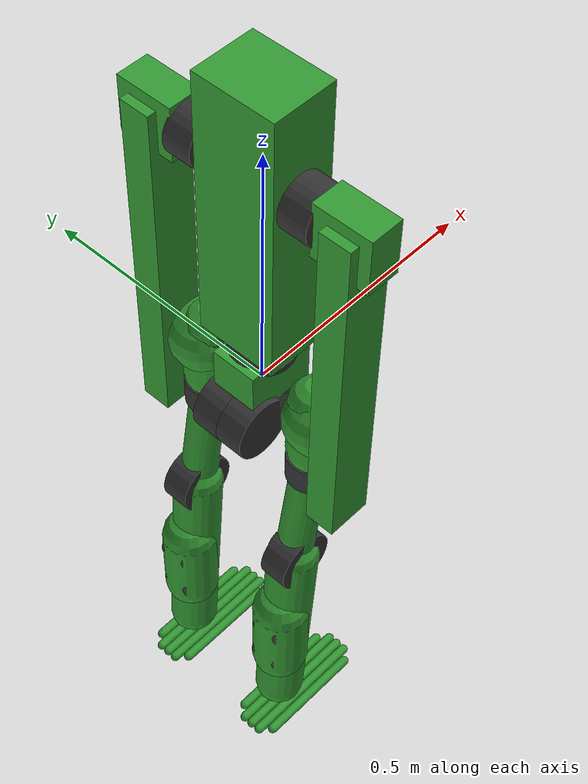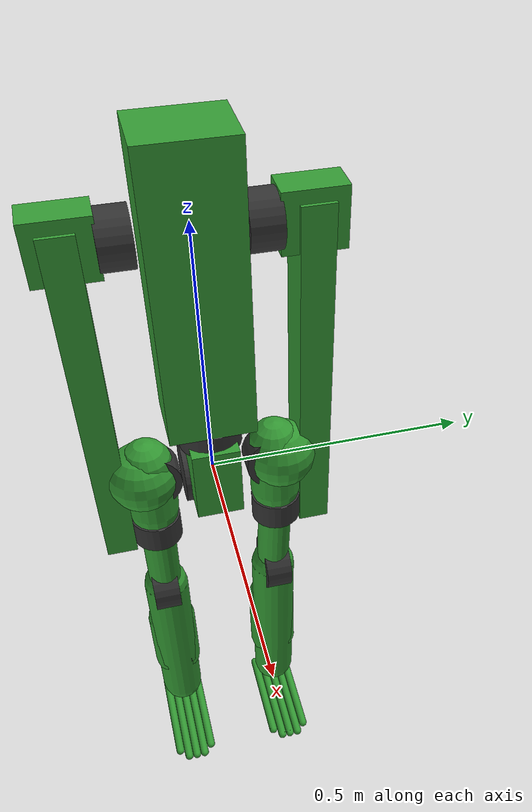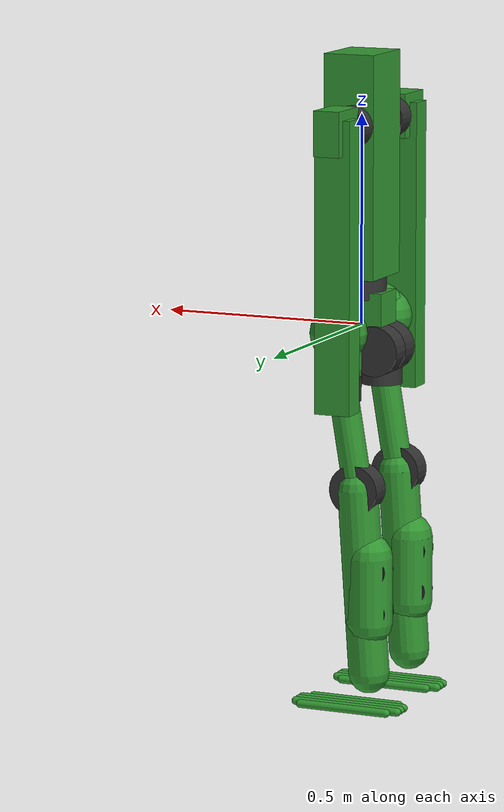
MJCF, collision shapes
<mujoco model="pygmalion_v2">
  <compiler angle="radian" meshdir="meshes" autolimits="true"/>
  <default>
    <default class="pygmalion">
      <default class="visual">
        <geom group="2" type="mesh" density="0" material="silver" contype="0" conaffinity="0"/>
      </default>
      <default class="collision">
        <geom group="3" rgba=".2 .6 .2 .3" type="capsule" contype="1" conaffinity="1"/>
        <default class="foot_capsule">
          <geom type="capsule" size="0.01"/>
        </default>
      </default>
      <default class="hull">
        <geom group="4" type="mesh" density="0" material="hull" contype="0" conaffinity="0"/>
      </default>
      <site group="5" rgba="1 0 0 1"/>
    </default>
  </default>
  <asset>
    <material name="silver" rgba="0.7 0.7 0.7 1"/>
    <material name="hull" rgba="0.2 0.4 0.9 0.25"/>
    <material name="black" rgba="0.2 0.2 0.2 1"/>
    <material name="red" rgba="1.0 0.0 0.0 1.0"/>
    <mesh name="pelvis" file="pelvis.stl"/>
    <mesh name="pelvis_hull" file="pelvis_hull.stl"/>
    <mesh name="L_hip_pitch_link" file="hip_pitch_link.stl"/>
    <mesh name="L_hip_pitch_link_hull" file="hip_pitch_link_hull.stl"/>
    <mesh name="L_hip_roll_link" file="hip_roll_link.stl"/>
    <mesh name="L_hip_roll_link_hull" file="hip_roll_link_hull.stl"/>
    <mesh name="L_thigh" file="thigh.stl"/>
    <mesh name="L_thigh_hull" file="thigh_hull.stl"/>
    <mesh name="L_shin" file="shin.stl"/>
    <mesh name="L_shin_hull" file="shin_hull.stl"/>
    <mesh name="L_foot" file="foot.stl"/>
    <mesh name="L_foot_hull" file="foot_hull.stl"/>
    <mesh name="R_hip_pitch_link" file="R_hip_pitch_link.stl"/>
    <mesh name="R_hip_pitch_link_hull" file="R_hip_pitch_link_hull.stl"/>
    <mesh name="R_hip_roll_link" file="R_hip_roll_link.stl"/>
    <mesh name="R_hip_roll_link_hull" file="R_hip_roll_link_hull.stl"/>
    <mesh name="R_thigh" file="R_thigh.stl"/>
    <mesh name="R_thigh_hull" file="R_thigh_hull.stl"/>
    <mesh name="R_shin" file="R_shin.stl"/>
    <mesh name="R_shin_hull" file="R_shin_hull.stl"/>
    <mesh name="R_foot" file="R_foot.stl"/>
    <mesh name="R_foot_hull" file="R_foot_hull.stl"/>
    <mesh name="torso" file="torso.stl"/>
    <mesh name="torso_hull" file="torso_hull.stl"/>
    <mesh name="L_torso_shpitch" file="torso_shpitch.stl"/>
    <mesh name="L_shoulder_pitch_link" file="shoulder_pitch_link.stl"/>
    <mesh name="L_shoulder_pitch_link_hull" file="shoulder_pitch_link_hull.stl"/>
    <mesh name="L_arm" file="arm.stl"/>
    <mesh name="L_arm_hull" file="arm_hull.stl"/>
    <mesh name="R_torso_shpitch" file="R_torso_shpitch.stl"/>
    <mesh name="R_shoulder_pitch_link" file="R_shoulder_pitch_link.stl"/>
    <mesh name="R_shoulder_pitch_link_hull" file="R_shoulder_pitch_link_hull.stl"/>
    <mesh name="R_arm" file="R_arm.stl"/>
    <mesh name="R_arm_hull" file="R_arm_hull.stl"/>
  </asset>
  <worldbody>
    <body name="base_link" childclass="pygmalion">
      <freejoint name="root"/>
      <inertial pos="-0.0277433 -0.00121931 0.00266945" mass="5.3668" fullinertia="0.0324176 0.0377931 0.0165288 0.000209331 -0.0085446 -8.55037e-05"/>
      <geom mesh="pelvis" class="visual"/>
      <geom name="pelvis_hull" mesh="pelvis_hull" class="hull"/>
      <geom name="L_hip_pitch_motor" type="cylinder" size="0.0600 0.0278" pos="-0.05288 -0.02732 -0.05380" zaxis="0.0000 1.0000 0.0000" class="visual" material="black"/>
      <geom name="waist_yaw_motor" type="cylinder" size="0.0600 0.0278" pos="0.00053 0.00058 0.09393" zaxis="0.0000 0.0000 1.0000" class="visual" material="black"/>
      <geom name="R_hip_pitch_motor" type="cylinder" size="0.0600 0.0278" pos="-0.05288 0.02732 -0.05380" zaxis="0.0000 -1.0000 0.0000" class="visual" material="black"/>
      <geom name="base_pelvis_collision" class="collision" type="box" pos="0 0 0.008" size="0.069 0.045 0.075"/>
      <site name="imu_in_base" size="0.03" pos="0.004 0 0.241"/>
      <body name="L_hip_pitch_link" pos="0 -0.1237 0">
        <inertial pos="0.000855967 0.0124212 0.00133312" mass="2.1738" fullinertia="0.00551161 0.00351194 0.00413077 3.68377e-05 4.96564e-06 -9.93989e-05"/>
        <joint name="L_hip_pitch_joint" pos="0 0 0" axis="0 1 0" range="-2.0943951023931953 0.4363323129985824"/>
        <geom mesh="L_hip_pitch_link" class="visual"/>
        <geom name="L_hip_pitch_link_hull" mesh="L_hip_pitch_link_hull" class="hull"/>
        <geom name="L_hip_roll_motor" type="cylinder" size="0.0600 0.0278" pos="0.00317 0.00061 0.00049" zaxis="-1.0000 0.0000 0.0000" class="visual" material="black"/>
        <geom name="L_hip_pitch_collision" class="collision" type="sphere" pos="0.0 -0.012 0.0" size="0.068"/>
        <body name="L_hip_roll_link" pos="0 0 0">
          <inertial pos="0.00131994 -0.00243218 -0.104881" mass="1.6181" fullinertia="0.0055353 0.00574331 0.00249478 -4.9279e-06 -0.000218639 0.000136744"/>
          <joint name="L_hip_roll_joint" pos="0 0 0" axis="1 0 0" range="-1.4835298641951802 0.4363323129985824"/>
          <geom mesh="L_hip_roll_link" class="visual"/>
          <geom name="L_hip_roll_link_hull" mesh="L_hip_roll_link_hull" class="hull"/>
          <geom name="L_hip_yaw_motor" type="cylinder" size="0.0495 0.0283" pos="0.00006 0.00003 -0.13303" zaxis="0.0000 0.0000 1.0000" class="visual" material="black"/>
          <geom name="L_hip_roll_collision" class="collision" type="capsule" fromto="0 0 0.03  0 0 -0.085" size="0.05"/>
          <body name="L_thigh_link" pos="0 0 0">
            <inertial pos="-0.0284174 -0.000721632 -0.307125" mass="2.9294" fullinertia="0.0241122 0.0273241 0.00624474 -2.35227e-05 -0.00471023 -0.000128926"/>
            <joint name="L_hip_yaw_joint" pos="0 0 0" axis="0 0 -1" range="-0.7853981633974483 0.7853981633974483"/>
            <geom mesh="L_thigh" class="visual"/>
            <geom name="L_thigh_link_hull" mesh="L_thigh_hull" class="hull"/>
            <geom name="L_knee_motor" type="cylinder" size="0.0600 0.0278" pos="-0.04495 -0.00318 -0.36922" zaxis="0.0000 1.0000 0.0000" class="visual" material="black"/>
            <geom name="L_thigh_collision" class="collision" type="capsule" fromto="-0.005 0 -0.13  -0.045 0 -0.37" size="0.0349"/>
            <body name="L_shin_link" pos="-0.045 0 -0.37">
              <inertial pos="-0.0282794 -0.000426298 -0.228625" mass="3.6275" fullinertia="0.0443256 0.045674 0.00551796 1.97194e-05 -0.00344946 -0.000247747"/>
              <joint name="L_knee_joint" pos="0 0 0" axis="0 -1 0" range="-2.0943951023931953 0.0"/>
              <geom mesh="L_shin" class="visual"/>
              <geom name="L_shin_link_hull" mesh="L_shin_hull" class="hull"/>
              <geom name="L_ankle_b_motor" type="cylinder" size="0.0495 0.0283" pos="-0.02994 -0.00172 -0.19003" zaxis="0.0000 1.0000 0.0000" class="visual" material="black"/>
              <geom name="L_ankle_a_motor" type="cylinder" size="0.0495 0.0283" pos="-0.03006 0.00172 -0.29003" zaxis="0.0000 1.0000 0.0000" class="visual" material="black"/>
              <geom name="L_shin_collision" class="collision" type="capsule" fromto="0 0 0.0  -0.03 0 -0.44" size="0.0485"/>
              <geom name="L_shin_motors_collision" class="collision" type="capsule" fromto="-0.03 0 -0.16  -0.03 0 -0.32" size="0.055"/>
              <body name="L_ankle_pitch_link" pos="-0.03 0 -0.49">
                <inertial pos="2.84217e-17 1.42109e-17 1.13687e-16" mass="0.084987" fullinertia="2.31383e-05 8.46533e-06 2.28566e-05 -6.745e-10 -4e-09 -3.48e-09"/>
                <joint name="L_ankle_pitch_joint" pos="0 0 0" axis="0 -1 0" range="-0.8726646259971648 0.5235987755982988"/>
                <body name="L_foot_link" pos="0 0 0">
                  <inertial pos="0.0214231 0.00112393 -0.0218075" mass="1.0304" fullinertia="0.00254475 0.006607 0.00593805 8.96312e-05 0.000805015 -0.000178476"/>
                  <joint name="L_ankle_roll_joint" pos="0 0 0" axis="-1 0 0" range="-0.3490658503988659 0.3490658503988659"/>
                  <geom mesh="L_foot" class="visual"/>
                  <geom name="L_foot_link_hull" mesh="L_foot_hull" class="hull"/>
                  <site name="left_foot" pos="0.05 0 -0.043" size="0.01"/>
                  <geom name="L_foot2_collision" class="foot_capsule" fromto="-0.060 -0.040 -0.033  0.160 -0.040 -0.033"/>
                  <geom name="L_foot3_collision" class="foot_capsule" fromto="-0.080 -0.020 -0.033  0.180 -0.020 -0.033"/>
                  <geom name="L_foot4_collision" class="foot_capsule" fromto="-0.080 0.000 -0.033  0.180 0.000 -0.033"/>
                  <geom name="L_foot5_collision" class="foot_capsule" fromto="-0.080 0.020 -0.033  0.180 0.020 -0.033"/>
                  <geom name="L_foot6_collision" class="foot_capsule" fromto="-0.060 0.040 -0.033  0.160 0.040 -0.033"/>
                </body>
              </body>
            </body>
          </body>
        </body>
      </body>
      <body name="R_hip_pitch_link" pos="0 0.1237 0">
        <inertial pos="0.000855967 -0.0124212 0.00133312" mass="2.1738" fullinertia="0.00551161 0.00351194 0.00413077 -3.68377e-05 4.96564e-06 9.93989e-05"/>
        <joint name="R_hip_pitch_joint" pos="0 0 0" axis="0 1 0" range="-2.0943951023931953 0.4363323129985824"/>
        <geom mesh="R_hip_pitch_link" class="visual"/>
        <geom name="R_hip_pitch_link_hull" mesh="R_hip_pitch_link_hull" class="hull"/>
        <geom name="R_hip_roll_motor" type="cylinder" size="0.0600 0.0278" pos="0.00317 -0.00061 0.00049" zaxis="-1.0000 -0.0000 0.0000" class="visual" material="black"/>
        <geom name="R_hip_pitch_collision" class="collision" type="sphere" pos="0.0 0.012 0.0" size="0.068"/>
        <body name="R_hip_roll_link" pos="0 0 0">
          <inertial pos="0.00131994 0.00243218 -0.104881" mass="1.6181" fullinertia="0.0055353 0.00574331 0.00249478 4.9279e-06 -0.000218639 -0.000136744"/>
          <joint name="R_hip_roll_joint" pos="0 0 0" axis="-1 0 0" range="-1.4835298641951802 0.4363323129985824"/>
          <geom mesh="R_hip_roll_link" class="visual"/>
          <geom name="R_hip_roll_link_hull" mesh="R_hip_roll_link_hull" class="hull"/>
          <geom name="R_hip_yaw_motor" type="cylinder" size="0.0495 0.0283" pos="0.00006 -0.00003 -0.13303" zaxis="0.0000 -0.0000 1.0000" class="visual" material="black"/>
          <geom name="R_hip_roll_collision" class="collision" type="capsule" fromto="0 0 0.03  0 0 -0.085" size="0.05"/>
          <body name="R_thigh_link" pos="0 0 0">
            <inertial pos="-0.0284174 0.000721632 -0.307125" mass="2.9294" fullinertia="0.0241122 0.0273241 0.00624474 2.35227e-05 -0.00471023 0.000128926"/>
            <joint name="R_hip_yaw_joint" pos="0 0 0" axis="0 0 -1" range="-0.7853981633974483 0.7853981633974483"/>
            <geom mesh="R_thigh" class="visual"/>
            <geom name="R_thigh_link_hull" mesh="R_thigh_hull" class="hull"/>
            <geom name="R_knee_motor" type="cylinder" size="0.0600 0.0278" pos="-0.04495 0.00318 -0.36922" zaxis="0.0000 -1.0000 0.0000" class="visual" material="black"/>
            <geom name="R_thigh_collision" class="collision" type="capsule" fromto="-0.005 0 -0.13  -0.045 0 -0.37" size="0.0349"/>
            <body name="R_shin_link" pos="-0.045 0 -0.37">
              <inertial pos="-0.0282794 0.000426298 -0.228625" mass="3.6275" fullinertia="0.0443256 0.045674 0.00551796 -1.97194e-05 -0.00344946 0.000247747"/>
              <joint name="R_knee_joint" pos="0 0 0" axis="0 -1 0" range="-2.0943951023931953 0.0"/>
              <geom mesh="R_shin" class="visual"/>
              <geom name="R_shin_link_hull" mesh="R_shin_hull" class="hull"/>
              <geom name="R_ankle_b_motor" type="cylinder" size="0.0495 0.0283" pos="-0.02994 0.00172 -0.19003" zaxis="0.0000 -1.0000 0.0000" class="visual" material="black"/>
              <geom name="R_ankle_a_motor" type="cylinder" size="0.0495 0.0283" pos="-0.03006 -0.00172 -0.29003" zaxis="0.0000 -1.0000 0.0000" class="visual" material="black"/>
              <geom name="R_shin_collision" class="collision" type="capsule" fromto="0 0 0.0  -0.03 0 -0.44" size="0.0485"/>
              <geom name="R_shin_motors_collision" class="collision" type="capsule" fromto="-0.03 0 -0.16  -0.03 0 -0.32" size="0.055"/>
              <body name="R_ankle_pitch_link" pos="-0.03 0 -0.49">
                <inertial pos="2.84217e-17 -1.42109e-17 1.13687e-16" mass="0.084987" fullinertia="2.31383e-05 8.46533e-06 2.28566e-05 6.745e-10 -4e-09 3.48e-09"/>
                <joint name="R_ankle_pitch_joint" pos="0 0 0" axis="0 -1 0" range="-0.8726646259971648 0.5235987755982988"/>
                <body name="R_foot_link" pos="0 0 0">
                  <inertial pos="0.0214231 -0.00112393 -0.0218075" mass="1.0304" fullinertia="0.00254475 0.006607 0.00593805 -8.96312e-05 0.000805015 0.000178476"/>
                  <joint name="R_ankle_roll_joint" pos="0 0 0" axis="1 0 0" range="-0.3490658503988659 0.3490658503988659"/>
                  <geom mesh="R_foot" class="visual"/>
                  <geom name="R_foot_link_hull" mesh="R_foot_hull" class="hull"/>
                  <site name="right_foot" pos="0.05 0 -0.043" size="0.01"/>
                  <geom name="R_foot2_collision" class="foot_capsule" fromto="-0.060 -0.040 -0.033  0.160 -0.040 -0.033"/>
                  <geom name="R_foot3_collision" class="foot_capsule" fromto="-0.080 -0.020 -0.033  0.180 -0.020 -0.033"/>
                  <geom name="R_foot4_collision" class="foot_capsule" fromto="-0.080 0.000 -0.033  0.180 0.000 -0.033"/>
                  <geom name="R_foot5_collision" class="foot_capsule" fromto="-0.080 0.020 -0.033  0.180 0.020 -0.033"/>
                  <geom name="R_foot6_collision" class="foot_capsule" fromto="-0.060 0.040 -0.033  0.160 0.040 -0.033"/>
                </body>
              </body>
            </body>
          </body>
        </body>
      </body>
      <body name="torso_link" pos="0 0 0.1175">
        <inertial pos="-0.0151972 -4.8463e-05 0.279032" mass="5.9658" fullinertia="0.161967 0.134253 0.0397492 7.23011e-06 0.000427987 0.000639134"/>
        <joint name="waist_yaw_joint" pos="0 0 0" axis="0 0 1" range="-1.0471975511965976 1.0471975511965976"/>
        <geom mesh="torso" class="visual"/>
        <geom name="torso_hull" mesh="torso_hull" class="hull"/>
        <geom mesh="L_torso_shpitch" class="visual" material="black"/>
        <geom mesh="R_torso_shpitch" class="visual" material="black"/>
        <geom name="L_shoulder_pitch_motor" type="cylinder" size="0.0495 0.0283" pos="-0.01506 -0.11603 0.36253" zaxis="0.0000 1.0000 0.0000" class="visual" material="black"/>
        <geom name="neck_pitch_motor" type="cylinder" size="0.0285 0.0257" pos="-0.01500 -0.00211 0.48950" zaxis="0.0000 1.0000 0.0000" class="visual" material="black"/>
        <geom name="neck_yaw_motor" type="cylinder" size="0.0418 0.0227" pos="-0.01500 0.00002 0.42983" zaxis="0.0000 0.0000 1.0000" class="visual" material="black"/>
        <geom name="R_shoulder_pitch_motor" type="cylinder" size="0.0495 0.0283" pos="-0.01506 0.11603 0.36253" zaxis="0.0000 -1.0000 0.0000" class="visual" material="black"/>
        <geom name="torso_collision" class="collision" type="box" pos="0.0000 0.0000 0.2642" size="0.0625 0.0800 0.2642"/>
          <body name="L_shoulder_pitch_link" pos="-0.015 -0.2 0.3625">
            <inertial pos="-0.00184376 0.00689754 2.57811e-05" mass="1.1776" fullinertia="0.00200274 0.00132509 0.00152136 -1.60739e-05 6.32106e-06 6.945e-07"/>
            <joint name="L_shoulder_pitch_joint" pos="0 0 0" axis="0 1 0" range="-3.141592653589793 1.0471975511965976"/>
            <geom mesh="L_shoulder_pitch_link" class="visual"/>
            <geom name="L_shoulder_pitch_link_hull" mesh="L_shoulder_pitch_link_hull" class="hull"/>
            <geom name="L_shoulder_roll_motor" type="cylinder" size="0.0495 0.0283" pos="-0.00247 -0.00006 0.00003" zaxis="-1.0000 0.0000 0.0000" class="visual" material="black"/>
            <geom name="L_shoulder_pitch_link_collision" class="collision" type="box" pos="-0.0033 0.0038 0.0000" size="0.0318 0.0562 0.0529"/>
            <body name="L_arm_link" pos="0 0 0">
              <inertial pos="-0.00595046 -0.000128917 -0.255827" mass="2.8414" fullinertia="0.174888 0.17651 0.00250595 -2.04342e-06 0.00274131 6.65026e-05"/>
              <joint name="L_shoulder_roll_joint" pos="0 0 0" axis="1 0 0" range="-0.5585053606381855 0.5235987755982988"/>
              <geom mesh="L_arm" class="visual"/>
              <geom name="L_arm_link_hull" mesh="L_arm_hull" class="hull"/>
              <geom name="L_arm_link_collision" class="collision" type="box" pos="-0.0085 0.0000 -0.3135" size="0.0440 0.0300 0.3435"/>
            </body>
          </body>
          <body name="R_shoulder_pitch_link" pos="-0.015 0.2 0.3625">
            <inertial pos="-0.00184376 -0.00689754 2.57811e-05" mass="1.1776" fullinertia="0.00200274 0.00132509 0.00152136 1.60739e-05 6.32106e-06 -6.945e-07"/>
            <joint name="R_shoulder_pitch_joint" pos="0 0 0" axis="0 1 0" range="-3.141592653589793 1.0471975511965976"/>
            <geom mesh="R_shoulder_pitch_link" class="visual"/>
            <geom name="R_shoulder_pitch_link_hull" mesh="R_shoulder_pitch_link_hull" class="hull"/>
            <geom name="R_shoulder_roll_motor" type="cylinder" size="0.0495 0.0283" pos="-0.00247 0.00006 0.00003" zaxis="-1.0000 -0.0000 0.0000" class="visual" material="black"/>
            <geom name="R_shoulder_pitch_link_collision" class="collision" type="box" pos="-0.0033 -0.0038 0.0000" size="0.0318 0.0562 0.0529"/>
            <body name="R_arm_link" pos="0 0 0">
              <inertial pos="-0.00595046 0.000128917 -0.255827" mass="2.8414" fullinertia="0.174888 0.17651 0.00250595 2.04342e-06 0.00274131 -6.65026e-05"/>
              <joint name="R_shoulder_roll_joint" pos="0 0 0" axis="-1 0 0" range="-0.5585053606381855 0.5235987755982988"/>
              <geom mesh="R_arm" class="visual"/>
              <geom name="R_arm_link_hull" mesh="R_arm_hull" class="hull"/>
              <geom name="R_arm_link_collision" class="collision" type="box" pos="-0.0085 0.0000 -0.3135" size="0.0440 0.0300 0.3435"/>
            </body>
          </body>
      </body>
    </body>
  </worldbody>
  <contact>
    <exclude body1="base_link" body2="L_hip_pitch_link"/>
    <exclude body1="L_hip_pitch_link" body2="L_hip_roll_link"/>
    <exclude body1="L_hip_roll_link" body2="L_thigh_link"/>
    <exclude body1="L_thigh_link" body2="L_shin_link"/>
    <exclude body1="L_shin_link" body2="L_ankle_pitch_link"/>
    <exclude body1="L_ankle_pitch_link" body2="L_foot_link"/>
    <exclude body1="base_link" body2="L_hip_roll_link"/>
    <exclude body1="L_hip_pitch_link" body2="L_thigh_link"/>
    <exclude body1="base_link" body2="R_hip_pitch_link"/>
    <exclude body1="R_hip_pitch_link" body2="R_hip_roll_link"/>
    <exclude body1="R_hip_roll_link" body2="R_thigh_link"/>
    <exclude body1="R_thigh_link" body2="R_shin_link"/>
    <exclude body1="R_shin_link" body2="R_ankle_pitch_link"/>
    <exclude body1="R_ankle_pitch_link" body2="R_foot_link"/>
    <exclude body1="base_link" body2="R_hip_roll_link"/>
    <exclude body1="R_hip_pitch_link" body2="R_thigh_link"/>
    <exclude body1="base_link" body2="torso_link"/>
    <exclude body1="torso_link" body2="L_shoulder_pitch_link"/>
    <exclude body1="L_shoulder_pitch_link" body2="L_arm_link"/>
    <exclude body1="torso_link" body2="L_arm_link"/>
    <exclude body1="L_arm_link" body2="L_hip_pitch_link"/>
    <exclude body1="L_arm_link" body2="L_hip_roll_link"/>
    <exclude body1="torso_link" body2="R_shoulder_pitch_link"/>
    <exclude body1="R_shoulder_pitch_link" body2="R_arm_link"/>
    <exclude body1="torso_link" body2="R_arm_link"/>
    <exclude body1="R_arm_link" body2="R_hip_pitch_link"/>
    <exclude body1="R_arm_link" body2="R_hip_roll_link"/>
  </contact>
  <sensor>
    <gyro name="imu_ang_vel" site="imu_in_base"/>
    <velocimeter name="imu_lin_vel" site="imu_in_base"/>
    <accelerometer name="imu_lin_acc" site="imu_in_base"/>
    <framezaxis name="imu_upvector" objtype="body" objname="world" reftype="site" refname="imu_in_base"/>
    <subtreeangmom name="root_angmom" body="base_link"/>
  </sensor>
</mujoco>
